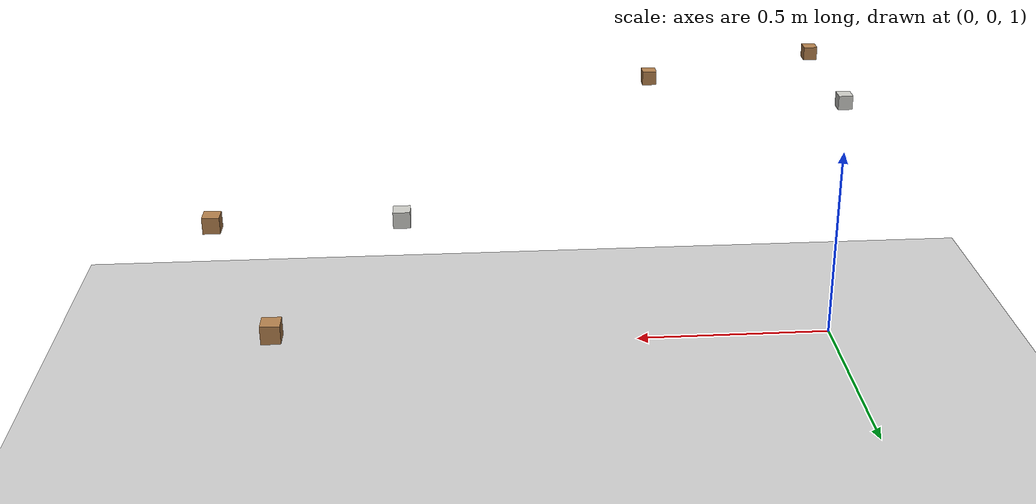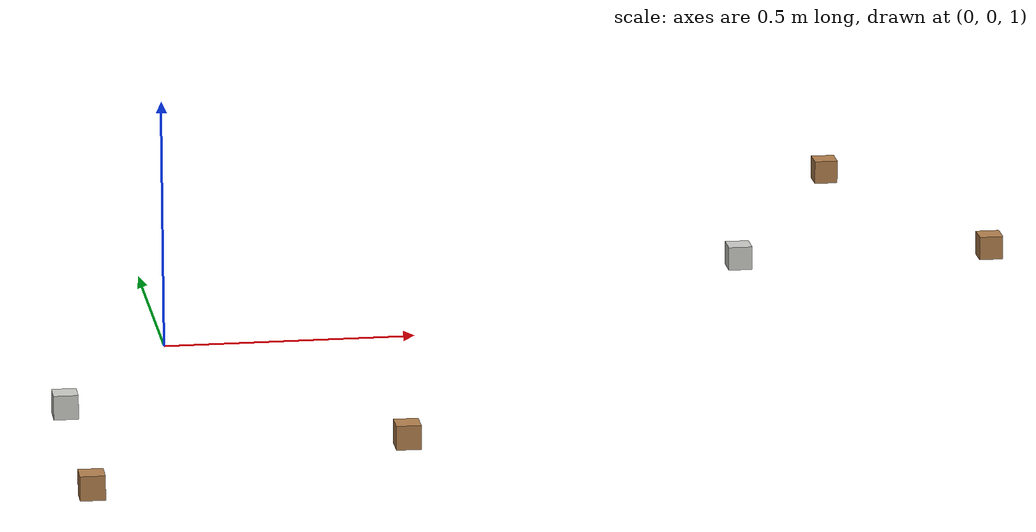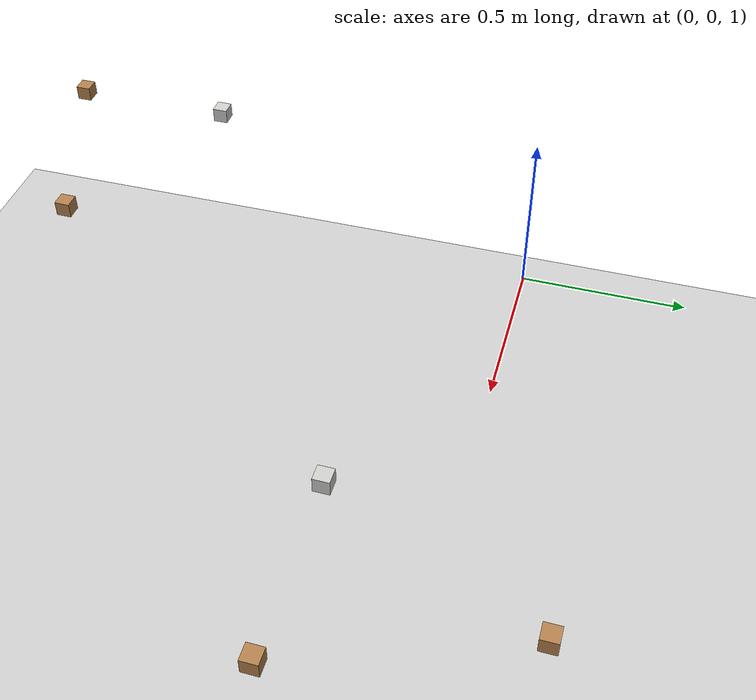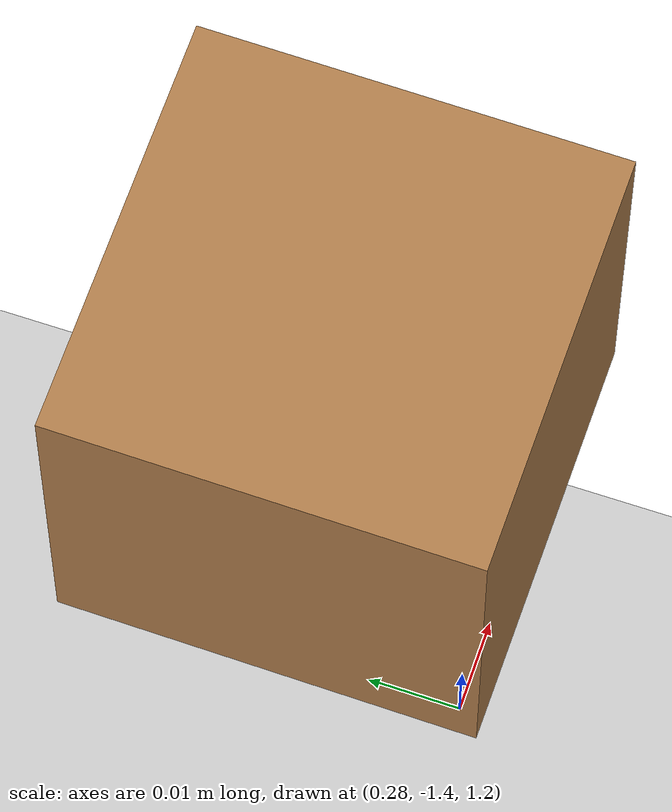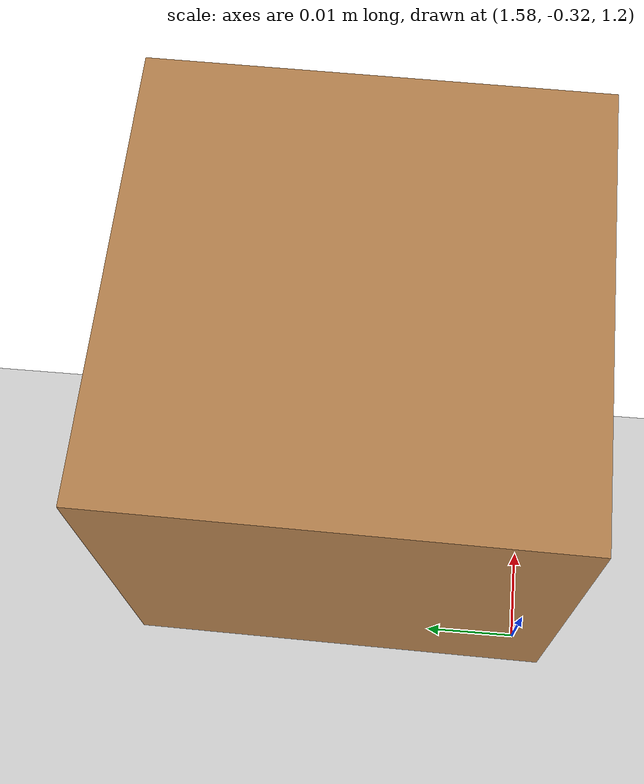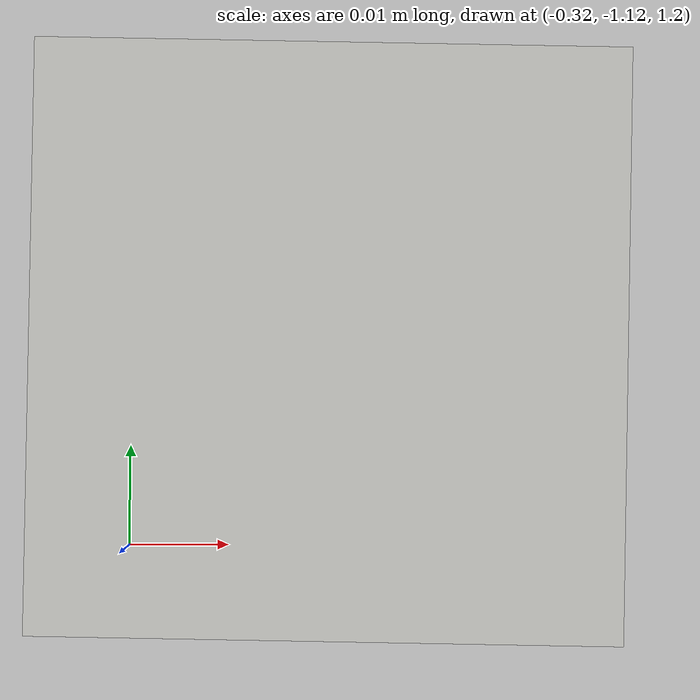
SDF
<sdf version="1.6">
 <world name="default">
  <gravity>0 0 -9.81</gravity>
  <physics name="default_physics" default="0" type="ode">
   <max_step_size>0.001</max_step_size>
   <real_time_factor>1</real_time_factor>
   <real_time_update_rate>1000</real_time_update_rate>
  </physics>
  <scene><ambient>0.4 0.4 0.4 1</ambient><background>0.7 0.7 0.7 1</background><shadows>1</shadows></scene>
  <include><uri>model://sun</uri></include>
  <include><uri>model://ground_plane</uri></include>
  <model name="cube1">
   <pose>0.3 -1.38 1.2 0 0 1.56</pose>
   <link name="link">
    <pose>0 0 0.025 0 0 0</pose>
    <inertial>
     <mass>0.0565</mass>
     <inertia>
      <ixx>2.3541666666666672e-05</ixx>
      <ixy>0</ixy>
      <ixz>0</ixz>
      <iyy>2.3541666666666672e-05</iyy>
      <iyz>0</iyz>
      <izz>2.3541666666666672e-05</izz>
     </inertia>
    </inertial>
    <collision name="collision">
     <geometry><box><size>0.046 0.046 0.046</size></box></geometry>
     <surface>
      <contact>
       <poissons_ratio>0.347</poissons_ratio>
       <elastic_modulus>8.8e+09</elastic_modulus>
       <ode><kp>100000</kp><kd>1</kd><max_vel>1.0</max_vel><min_depth>0.001</min_depth></ode>
      </contact>
      <friction>
       <torsional>
        <coefficient>10.0</coefficient>
        <use_patch_radius>0</use_patch_radius>
        <surface_radius>0.05</surface_radius>
       </torsional>
      </friction>
     </surface>
    </collision>
    <visual name="visual">
     <geometry><box><size>0.046 0.046 0.046</size></box></geometry>
     <material>
      <script><uri>file://media/materials/scripts/gazebo.material</uri><name>Gazebo/Wood</name></script>
     </material>
    </visual>
   </link>
  </model>
  <model name="cube2">
   <pose>-0.3 -1.1 1.2 0 0 1.56</pose>
   <link name="link">
    <pose>0 0 0.025 0 0 0</pose>
    <inertial>
     <mass>0.0565</mass>
     <inertia>
      <ixx>2.3541666666666672e-05</ixx>
      <ixy>0</ixy>
      <ixz>0</ixz>
      <iyy>2.3541666666666672e-05</iyy>
      <iyz>0</iyz>
      <izz>2.3541666666666672e-05</izz>
     </inertia>
    </inertial>
    <collision name="collision">
     <geometry><box><size>0.046 0.046 0.046</size></box></geometry>
     <surface>
      <contact>
       <poissons_ratio>0.347</poissons_ratio>
       <elastic_modulus>8.8e+09</elastic_modulus>
       <ode><kp>100000</kp><kd>1</kd><max_vel>1.0</max_vel><min_depth>0.001</min_depth></ode>
      </contact>
      <friction>
       <torsional>
        <coefficient>1.0</coefficient>
        <use_patch_radius>0</use_patch_radius>
        <surface_radius>0.05</surface_radius>
       </torsional>
      </friction>
     </surface>
    </collision>
    <visual name="visual">
     <geometry><box><size>0.046 0.046 0.046</size></box></geometry>
     <material>
      <script><uri>file://media/materials/scripts/gazebo.material</uri><name>Gazebo/CeilingTiled</name></script>
     </material>
    </visual>
   </link>
  </model>
  <model name="cube3">
   <pose>-0.3 -1.6 1.2 0 0 1.56</pose>
   <link name="link">
    <pose>0 0 0.025 0 0 0</pose>
    <inertial>
     <mass>0.0565</mass>
     <inertia>
      <ixx>2.3541666666666672e-05</ixx>
      <ixy>0</ixy>
      <ixz>0</ixz>
      <iyy>2.3541666666666672e-05</iyy>
      <iyz>0</iyz>
      <izz>2.3541666666666672e-05</izz>
     </inertia>
    </inertial>
    <collision name="collision">
     <geometry><box><size>0.046 0.046 0.046</size></box></geometry>
     <surface>
      <contact>
       <poissons_ratio>0.347</poissons_ratio>
       <elastic_modulus>8.8e+09</elastic_modulus>
       <ode><kp>100000</kp><kd>1</kd><max_vel>1.0</max_vel><min_depth>0.001</min_depth></ode>
      </contact>
      <friction>
       <torsional>
        <coefficient>1.0</coefficient>
        <use_patch_radius>0</use_patch_radius>
        <surface_radius>0.05</surface_radius>
       </torsional>
      </friction>
     </surface>
    </collision>
    <visual name="visual">
     <geometry><box><size>0.046 0.046 0.046</size></box></geometry>
     <material>
      <script><uri>file://media/materials/scripts/gazebo.material</uri><name>Gazebo/WoodPallet</name></script>
     </material>
    </visual>
   </link>
  </model>
  <model name="cube4">
   <pose>1.38 0.3 1.2 0 0 1.56</pose>
   <link name="link">
    <pose>0 0 0.025 0 0 0</pose>
    <inertial>
     <mass>0.0565</mass>
     <inertia>
      <ixx>2.3541666666666672e-05</ixx>
      <ixy>0</ixy>
      <ixz>0</ixz>
      <iyy>2.3541666666666672e-05</iyy>
      <iyz>0</iyz>
      <izz>2.3541666666666672e-05</izz>
     </inertia>
    </inertial>
    <collision name="collision">
     <geometry><box><size>0.046 0.046 0.046</size></box></geometry>
     <surface>
      <contact>
       <poissons_ratio>0.347</poissons_ratio>
       <elastic_modulus>8.8e+09</elastic_modulus>
       <ode><kp>100000</kp><kd>1</kd><max_vel>1.0</max_vel><min_depth>0.001</min_depth></ode>
      </contact>
      <friction>
       <torsional>
        <coefficient>10.0</coefficient>
        <use_patch_radius>0</use_patch_radius>
        <surface_radius>0.05</surface_radius>
       </torsional>
      </friction>
     </surface>
    </collision>
    <visual name="visual">
     <geometry><box><size>0.046 0.046 0.046</size></box></geometry>
     <material>
      <script><uri>file://media/materials/scripts/gazebo.material</uri><name>Gazebo/Wood</name></script>
     </material>
    </visual>
   </link>
  </model>
  <model name="cube5">
   <pose>1.1 -0.3 1.2 0 0 1.56</pose>
   <link name="link">
    <pose>0 0 0.025 0 0 0</pose>
    <inertial>
     <mass>0.0565</mass>
     <inertia>
      <ixx>2.3541666666666672e-05</ixx>
      <ixy>0</ixy>
      <ixz>0</ixz>
      <iyy>2.3541666666666672e-05</iyy>
      <iyz>0</iyz>
      <izz>2.3541666666666672e-05</izz>
     </inertia>
    </inertial>
    <collision name="collision">
     <geometry><box><size>0.046 0.046 0.046</size></box></geometry>
     <surface>
      <contact>
       <poissons_ratio>0.347</poissons_ratio>
       <elastic_modulus>8.8e+09</elastic_modulus>
       <ode><kp>100000</kp><kd>1</kd><max_vel>1.0</max_vel><min_depth>0.001</min_depth></ode>
      </contact>
      <friction>
       <torsional>
        <coefficient>1.0</coefficient>
        <use_patch_radius>0</use_patch_radius>
        <surface_radius>0.05</surface_radius>
       </torsional>
      </friction>
     </surface>
    </collision>
    <visual name="visual">
     <geometry><box><size>0.046 0.046 0.046</size></box></geometry>
     <material>
      <script><uri>file://media/materials/scripts/gazebo.material</uri><name>Gazebo/CeilingTiled</name></script>
     </material>
    </visual>
   </link>
  </model>
  <model name="cube6">
   <pose>1.6 -0.3 1.2 0 0 1.56</pose>
   <link name="link">
    <pose>0 0 0.025 0 0 0</pose>
    <inertial>
     <mass>0.0565</mass>
     <inertia>
      <ixx>2.3541666666666672e-05</ixx>
      <ixy>0</ixy>
      <ixz>0</ixz>
      <iyy>2.3541666666666672e-05</iyy>
      <iyz>0</iyz>
      <izz>2.3541666666666672e-05</izz>
     </inertia>
    </inertial>
    <collision name="collision">
     <geometry><box><size>0.046 0.046 0.046</size></box></geometry>
     <surface>
      <contact>
       <poissons_ratio>0.347</poissons_ratio>
       <elastic_modulus>8.8e+09</elastic_modulus>
       <ode><kp>100000</kp><kd>1</kd><max_vel>1.0</max_vel><min_depth>0.001</min_depth></ode>
      </contact>
      <friction>
       <torsional>
        <coefficient>1.0</coefficient>
        <use_patch_radius>0</use_patch_radius>
        <surface_radius>0.05</surface_radius>
       </torsional>
      </friction>
     </surface>
    </collision>
    <visual name="visual">
     <geometry><box><size>0.046 0.046 0.046</size></box></geometry>
     <material>
      <script><uri>file://media/materials/scripts/gazebo.material</uri><name>Gazebo/WoodPallet</name></script>
     </material>
    </visual>
   </link>
  </model>
 </world>
</sdf>
